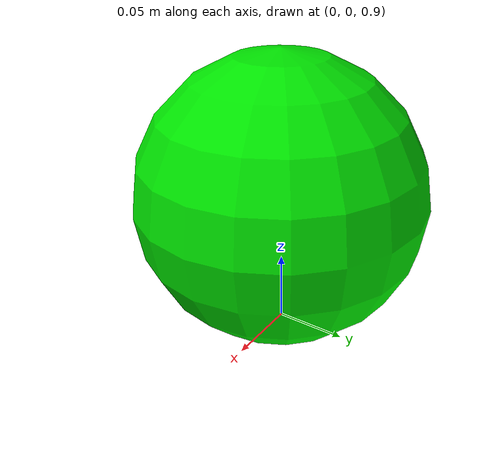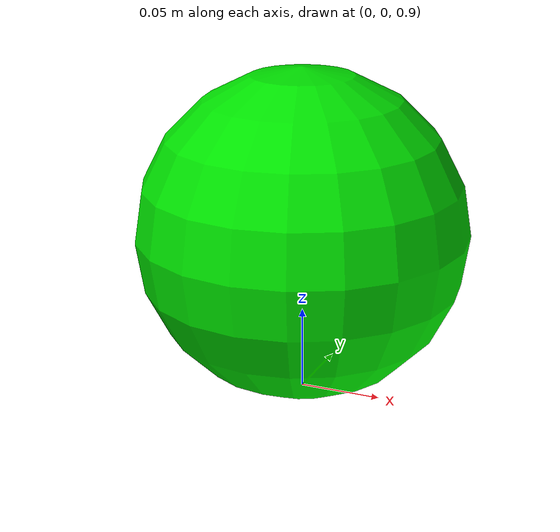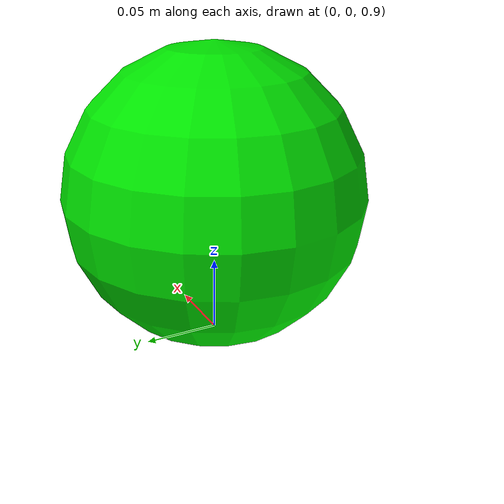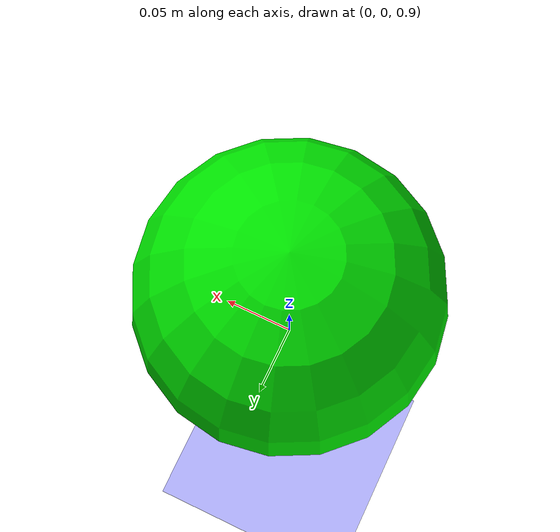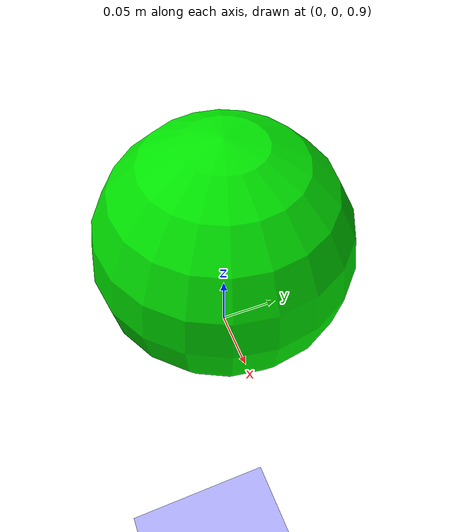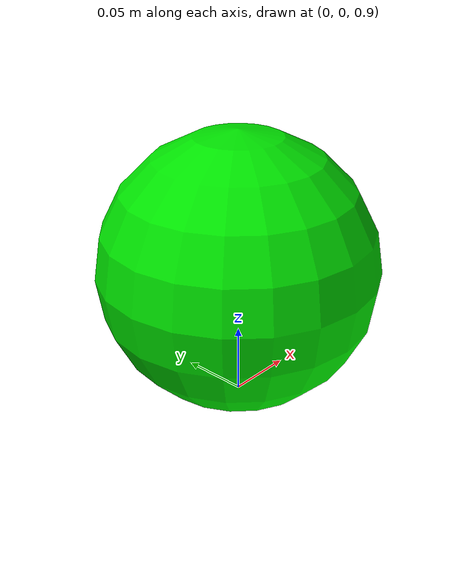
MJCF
<mujoco>
    <worldbody>
      <light diffuse=".5 .5 .5" pos="0 0 3" dir="0 0 -1"/>
      <geom type="plane" size="1 1 0.1" rgba=".9 0 0 1"/>
      <site name="plane_contact" type="box" size="1 1" rgba="0 0 1 0.3"/>
      <body pos="0 0 1">
        <joint type="free"/>
        <geom type="sphere" size=".1 .2 .3" rgba="0 .9 0 1"/>
      </body>
    </worldbody>
    <sensor>
      <torque site="plane_contact"/>
    </sensor>
 </mujoco>
